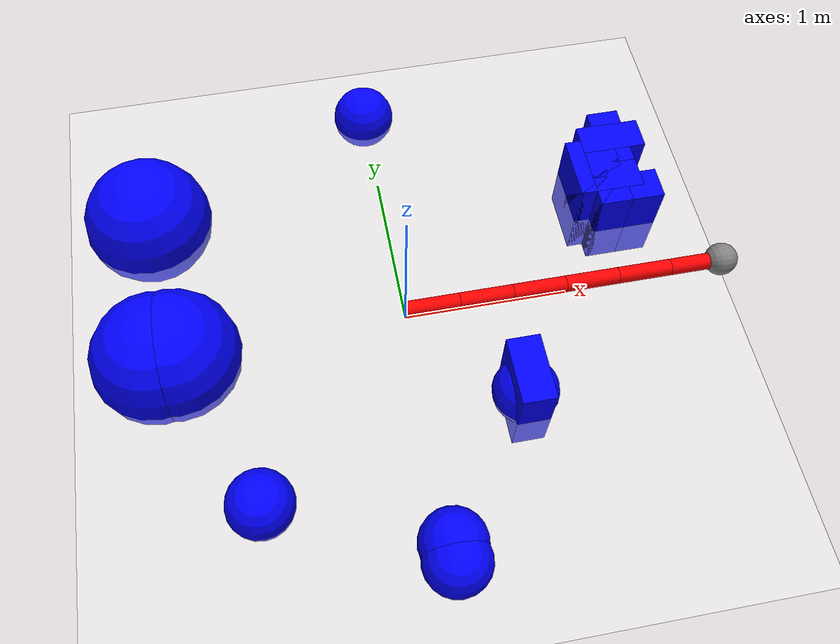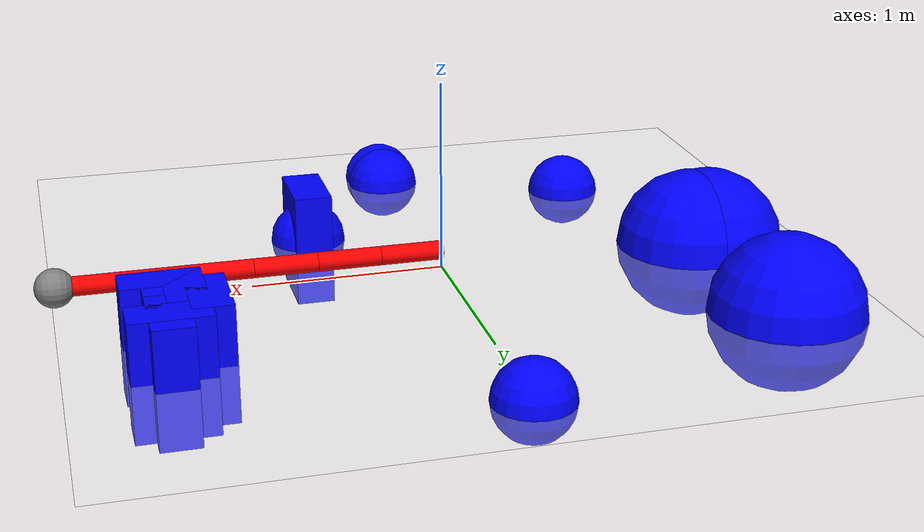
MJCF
<mujoco>
	<asset>
		<material name="red"   rgba="1 0 0 1"/>
		<material name="green" rgba="0 1 0 1"/>
		<material name="blue"  rgba="0 0 1 1"/>
		<material name="white" rgba="1 1 1 1"/>
		<material name="gray"  rgba=".5 .5 .5 1"/>
	</asset>

    <worldbody>
        <light diffuse=".5 .5 .5" pos="0 0 10" dir="0 0 -1"/>
        <geom type="plane" size="2 2 0.1" rgba="1 1 1 1"/>

        <body name="link 0" pos="0.165 0 0.1" euler="0 90 0">
            <joint name="joint 0" type="hinge" axis="-1 0 0" pos="0 0 -0.165"/>
            <geom name="geom link 0" type="cylinder" size="0.05 0.165" material="red"/>
            <body name="link 1" pos="0 0 0.33" euler="0 0 0">
                <joint name="joint 1" type="hinge" axis="-1 0 0" pos="0 0 -0.165"/>
                <geom name="geom link 1" type="cylinder" size="0.05 0.165" material="red"/>
                <body name="link 2" pos="0 0 0.33" euler="0 0 0">
                    <joint name="joint 2" type="hinge" axis="-1 0 0" pos="0 0 -0.165"/>
                    <geom name="geom link 2" type="cylinder" size="0.05 0.165" material="red"/>
                    <body name="link 3" pos="0 0 0.33" euler="0 0 0">
                        <joint name="joint 3" type="hinge" axis="-1 0 0" pos="0 0 -0.165"/>
                        <geom name="geom link 3" type="cylinder" size="0.05 0.165" material="red"/>
                        <body name="link 4" pos="0 0 0.33" euler="0 0 0">
                            <joint name="joint 4" type="hinge" axis="-1 0 0" pos="0 0 -0.165"/>
                            <geom name="geom link 4" type="cylinder" size="0.05 0.165" material="red"/>
                            <body name="link 5" pos="0 0 0.33" euler="0 0 0">
                                <joint name="joint 5" type="hinge" axis="-1 0 0" pos="0 0 -0.165"/>
                                <geom name="geom link 5" type="cylinder" size="0.05 0.165" material="red"/>
                                <site name="tip" size="0.1" pos="0 0 0.165"/>
                            </body>
                        </body>
                    </body>
                </body>
            </body>
        </body>

        <body name="link 0 shade" pos="0.165 0 0.1" euler="0 90 0">
            <joint name="joint 0 shade" type="hinge" axis="-1 0 0" pos="0 0 -0.165"/>
            <geom name="geom link 0 shade" type="cylinder" size="0.05 0.165" material="green"/>
            <body name="link 1 shade" pos="0 0 0.33" euler="0 0 0">
                <joint name="joint 1 shade" type="hinge" axis="-1 0 0" pos="0 0 -0.165"/>
                <geom name="geom link 1 shade" type="cylinder" size="0.05 0.165" material="green"/>
                <body name="link 2 shade" pos="0 0 0.33" euler="0 0 0">
                    <joint name="joint 2 shade" type="hinge" axis="-1 0 0" pos="0 0 -0.165"/>
                    <geom name="geom link 2 shade" type="cylinder" size="0.05 0.165" material="green"/>
                    <body name="link 3 shade" pos="0 0 0.33" euler="0 0 0">
                        <joint name="joint 3 shade" type="hinge" axis="-1 0 0" pos="0 0 -0.165"/>
                        <geom name="geom link 3 shade" type="cylinder" size="0.05 0.165" material="green"/>
                        <body name="link 4 shade" pos="0 0 0.33" euler="0 0 0">
                            <joint name="joint 4 shade" type="hinge" axis="-1 0 0" pos="0 0 -0.165"/>
                            <geom name="geom link 4 shade" type="cylinder" size="0.05 0.165" material="green"/>
                            <body name="link 5 shade" pos="0 0 0.33" euler="0 0 0">
                                <joint name="joint 5 shade" type="hinge" axis="-1 0 0" pos="0 0 -0.165"/>
                                <geom name="geom link 5 shade" type="cylinder" size="0.05 0.165" material="green"/>
                            </body>
                        </body>
                    </body>
                </body>
            </body>
        </body>

        <body name="obstacle 0">
            <geom name="geom obstacle 0" type="box" size="0.1 0.2 0.3" pos="1.5 0.9 0.0" material="blue"/>
        </body>
        <body name="obstacle 1">
            <geom name="geom obstacle 1" type="sphere" size="0.2" pos="0.0 -1.5 0.0" material="blue"/>
        </body>
        <body name="obstacle 2">
            <geom name="geom obstacle 2" type="sphere" size="0.4" pos="-1.5 0.0 0.0" material="blue"/>
        </body>
        <body name="obstacle 3">
            <geom name="geom obstacle 3" type="box" size="0.2 0.1 0.3" pos="1.5 0.9 0.0" material="blue"/>
        </body>
        <body name="obstacle 4">
            <geom name="geom obstacle 4" type="box" size="0.1 0.2 0.3" pos="1.3 0.7 0.0" material="blue"/>
        </body>
        <body name="obstacle 5">
            <geom name="geom obstacle 5" type="sphere" size="0.2" pos="0.0 -1.4 0.0" material="blue"/>
        </body>
        <body name="obstacle 6">
            <geom name="geom obstacle 6" type="sphere" size="0.4" pos="-1.4 0.0 0.0" material="blue"/>
        </body>
        <body name="obstacle 7">
            <geom name="geom obstacle 7" type="box" size="0.2 0.1 0.3" pos="1.4 0.6 0.0" material="blue"/>
        </body>
        <body name="obstacle 8">
            <geom name="geom obstacle 8" type="box" size="0.1 0.2 0.3" pos="0.6 -0.6 0.0" material="blue"/>
        </body>
        <body name="obstacle 9">
            <geom name="geom obstacle 9" type="sphere" size="0.2" pos="-1.0 -1.0 0.0" material="blue"/>
        </body>
        <body name="obstacle 10">
            <geom name="geom obstacle 10" type="sphere" size="0.4" pos="-1.5 1.0 0.0" material="blue"/>
        </body>
        <body name="obstacle 11">
            <geom name="geom obstacle 11" type="box" size="0.2 0.1 0.3" pos="1.5 0.5 0.0" material="blue"/>
        </body>
        <body name="obstacle 12">
            <geom name="geom obstacle 12" type="box" size="0.1 0.2 0.3" pos="1.4 0.6 0.0" material="blue"/>
        </body>
        <body name="obstacle 13">
            <geom name="geom obstacle 13" type="sphere" size="0.2" pos="0.6 -0.6 0.0" material="blue"/>
        </body>
        <body name="obstacle 14">
            <geom name="geom obstacle 14" type="sphere" size="0.4" pos="-1.4 0.0 0.0" material="blue"/>
        </body>
        <body name="obstacle 15">
            <geom name="geom obstacle 15" type="box" size="0.2 0.1 0.3" pos="1.4 0.6 0.0" material="blue"/>
        </body>
        <body name="obstacle 16">
            <geom name="geom obstacle 16" type="sphere" size="0.2" pos="0.0 1.6 0.0" material="blue"/>
        </body>

    </worldbody>

    <contact>
        <exclude body1="link 0 shade" body2="link 1 shade"/>
        <exclude body1="link 1 shade" body2="link 2 shade"/>
        <exclude body1="link 2 shade" body2="link 3 shade"/>
        <exclude body1="link 3 shade" body2="link 4 shade"/>
        <exclude body1="link 4 shade" body2="link 5 shade"/>
        <exclude body1="link 0 shade" body2="link 0"/>
        <exclude body1="link 0 shade" body2="link 1"/>
        <exclude body1="link 0 shade" body2="link 2"/>
        <exclude body1="link 0 shade" body2="link 3"/>
        <exclude body1="link 0 shade" body2="link 4"/>
        <exclude body1="link 0 shade" body2="link 5"/>
        <exclude body1="link 1 shade" body2="link 0"/>
        <exclude body1="link 1 shade" body2="link 1"/>
        <exclude body1="link 1 shade" body2="link 2"/>
        <exclude body1="link 1 shade" body2="link 3"/>
        <exclude body1="link 1 shade" body2="link 4"/>
        <exclude body1="link 1 shade" body2="link 5"/>
        <exclude body1="link 2 shade" body2="link 0"/>
        <exclude body1="link 2 shade" body2="link 1"/>
        <exclude body1="link 2 shade" body2="link 2"/>
        <exclude body1="link 2 shade" body2="link 3"/>
        <exclude body1="link 2 shade" body2="link 4"/>
        <exclude body1="link 2 shade" body2="link 5"/>
        <exclude body1="link 3 shade" body2="link 0"/>
        <exclude body1="link 3 shade" body2="link 1"/>
        <exclude body1="link 3 shade" body2="link 2"/>
        <exclude body1="link 3 shade" body2="link 3"/>
        <exclude body1="link 3 shade" body2="link 4"/>
        <exclude body1="link 3 shade" body2="link 5"/>
        <exclude body1="link 4 shade" body2="link 0"/>
        <exclude body1="link 4 shade" body2="link 1"/>
        <exclude body1="link 4 shade" body2="link 2"/>
        <exclude body1="link 4 shade" body2="link 3"/>
        <exclude body1="link 4 shade" body2="link 4"/>
        <exclude body1="link 4 shade" body2="link 5"/>
        <exclude body1="link 5 shade" body2="link 0"/>
        <exclude body1="link 5 shade" body2="link 1"/>
        <exclude body1="link 5 shade" body2="link 2"/>
        <exclude body1="link 5 shade" body2="link 3"/>
        <exclude body1="link 5 shade" body2="link 4"/>
        <exclude body1="link 5 shade" body2="link 5"/>
        <exclude body1="link 0 shade" body2="obstacle 0"/>
        <exclude body1="link 0 shade" body2="obstacle 1"/>
        <exclude body1="link 0 shade" body2="obstacle 2"/>
        <exclude body1="link 0 shade" body2="obstacle 3"/>
        <exclude body1="link 0 shade" body2="obstacle 4"/>
        <exclude body1="link 0 shade" body2="obstacle 5"/>
        <exclude body1="link 0 shade" body2="obstacle 6"/>
        <exclude body1="link 0 shade" body2="obstacle 7"/>
        <exclude body1="link 0 shade" body2="obstacle 8"/>
        <exclude body1="link 0 shade" body2="obstacle 9"/>
        <exclude body1="link 0 shade" body2="obstacle 10"/>
        <exclude body1="link 0 shade" body2="obstacle 11"/>
        <exclude body1="link 0 shade" body2="obstacle 12"/>
        <exclude body1="link 0 shade" body2="obstacle 13"/>
        <exclude body1="link 0 shade" body2="obstacle 14"/>
        <exclude body1="link 0 shade" body2="obstacle 15"/>
        <exclude body1="link 0 shade" body2="obstacle 16"/>
        <exclude body1="link 1 shade" body2="obstacle 0"/>
        <exclude body1="link 1 shade" body2="obstacle 1"/>
        <exclude body1="link 1 shade" body2="obstacle 2"/>
        <exclude body1="link 1 shade" body2="obstacle 3"/>
        <exclude body1="link 1 shade" body2="obstacle 4"/>
        <exclude body1="link 1 shade" body2="obstacle 5"/>
        <exclude body1="link 1 shade" body2="obstacle 6"/>
        <exclude body1="link 1 shade" body2="obstacle 7"/>
        <exclude body1="link 1 shade" body2="obstacle 8"/>
        <exclude body1="link 1 shade" body2="obstacle 9"/>
        <exclude body1="link 1 shade" body2="obstacle 10"/>
        <exclude body1="link 1 shade" body2="obstacle 11"/>
        <exclude body1="link 1 shade" body2="obstacle 12"/>
        <exclude body1="link 1 shade" body2="obstacle 13"/>
        <exclude body1="link 1 shade" body2="obstacle 14"/>
        <exclude body1="link 1 shade" body2="obstacle 15"/>
        <exclude body1="link 1 shade" body2="obstacle 16"/>
        <exclude body1="link 2 shade" body2="obstacle 0"/>
        <exclude body1="link 2 shade" body2="obstacle 1"/>
        <exclude body1="link 2 shade" body2="obstacle 2"/>
        <exclude body1="link 2 shade" body2="obstacle 3"/>
        <exclude body1="link 2 shade" body2="obstacle 4"/>
        <exclude body1="link 2 shade" body2="obstacle 5"/>
        <exclude body1="link 2 shade" body2="obstacle 6"/>
        <exclude body1="link 2 shade" body2="obstacle 7"/>
        <exclude body1="link 2 shade" body2="obstacle 8"/>
        <exclude body1="link 2 shade" body2="obstacle 9"/>
        <exclude body1="link 2 shade" body2="obstacle 10"/>
        <exclude body1="link 2 shade" body2="obstacle 11"/>
        <exclude body1="link 2 shade" body2="obstacle 12"/>
        <exclude body1="link 2 shade" body2="obstacle 13"/>
        <exclude body1="link 2 shade" body2="obstacle 14"/>
        <exclude body1="link 2 shade" body2="obstacle 15"/>
        <exclude body1="link 2 shade" body2="obstacle 16"/>
        <exclude body1="link 3 shade" body2="obstacle 0"/>
        <exclude body1="link 3 shade" body2="obstacle 1"/>
        <exclude body1="link 3 shade" body2="obstacle 2"/>
        <exclude body1="link 3 shade" body2="obstacle 3"/>
        <exclude body1="link 3 shade" body2="obstacle 4"/>
        <exclude body1="link 3 shade" body2="obstacle 5"/>
        <exclude body1="link 3 shade" body2="obstacle 6"/>
        <exclude body1="link 3 shade" body2="obstacle 7"/>
        <exclude body1="link 3 shade" body2="obstacle 8"/>
        <exclude body1="link 3 shade" body2="obstacle 9"/>
        <exclude body1="link 3 shade" body2="obstacle 10"/>
        <exclude body1="link 3 shade" body2="obstacle 11"/>
        <exclude body1="link 3 shade" body2="obstacle 12"/>
        <exclude body1="link 3 shade" body2="obstacle 13"/>
        <exclude body1="link 3 shade" body2="obstacle 14"/>
        <exclude body1="link 3 shade" body2="obstacle 15"/>
        <exclude body1="link 3 shade" body2="obstacle 16"/>
        <exclude body1="link 4 shade" body2="obstacle 0"/>
        <exclude body1="link 4 shade" body2="obstacle 1"/>
        <exclude body1="link 4 shade" body2="obstacle 2"/>
        <exclude body1="link 4 shade" body2="obstacle 3"/>
        <exclude body1="link 4 shade" body2="obstacle 4"/>
        <exclude body1="link 4 shade" body2="obstacle 5"/>
        <exclude body1="link 4 shade" body2="obstacle 6"/>
        <exclude body1="link 4 shade" body2="obstacle 7"/>
        <exclude body1="link 4 shade" body2="obstacle 8"/>
        <exclude body1="link 4 shade" body2="obstacle 9"/>
        <exclude body1="link 4 shade" body2="obstacle 10"/>
        <exclude body1="link 4 shade" body2="obstacle 11"/>
        <exclude body1="link 4 shade" body2="obstacle 12"/>
        <exclude body1="link 4 shade" body2="obstacle 13"/>
        <exclude body1="link 4 shade" body2="obstacle 14"/>
        <exclude body1="link 4 shade" body2="obstacle 15"/>
        <exclude body1="link 4 shade" body2="obstacle 16"/>
        <exclude body1="link 5 shade" body2="obstacle 0"/>
        <exclude body1="link 5 shade" body2="obstacle 1"/>
        <exclude body1="link 5 shade" body2="obstacle 2"/>
        <exclude body1="link 5 shade" body2="obstacle 3"/>
        <exclude body1="link 5 shade" body2="obstacle 4"/>
        <exclude body1="link 5 shade" body2="obstacle 5"/>
        <exclude body1="link 5 shade" body2="obstacle 6"/>
        <exclude body1="link 5 shade" body2="obstacle 7"/>
        <exclude body1="link 5 shade" body2="obstacle 8"/>
        <exclude body1="link 5 shade" body2="obstacle 9"/>
        <exclude body1="link 5 shade" body2="obstacle 10"/>
        <exclude body1="link 5 shade" body2="obstacle 11"/>
        <exclude body1="link 5 shade" body2="obstacle 12"/>
        <exclude body1="link 5 shade" body2="obstacle 13"/>
        <exclude body1="link 5 shade" body2="obstacle 14"/>
        <exclude body1="link 5 shade" body2="obstacle 15"/>
        <exclude body1="link 5 shade" body2="obstacle 16"/>
    </contact>

    <sensor>
      <framepos objtype="site" objname="tip"/>
    </sensor>
</mujoco>
